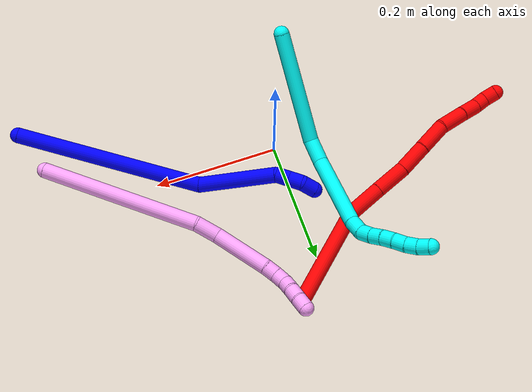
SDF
<sdf version="1.7">
 <world name="default">
  <plugin name="TubeGeneratorPlugin" filename="libtube_generator_plugin.so"/>
  <model name="photoneo_s_sensor">
   <static>1</static>
   <pose>0 0 2 1.57079 1.57079 3.14159</pose>
   <link name="link">
    <inertial><mass>0.1</mass></inertial>
    <sensor name="sensor" type="depth">
     <update_rate>30</update_rate>
     <camera>
      <horizontal_fov>1.22</horizontal_fov>
      <image><width>1920</width><height>1200</height><format>B8G8R8</format></image>
      <clip><near>0.1</near><far>4</far></clip>
      <depth_camera><output>points</output></depth_camera>
     </camera>
     <plugin name="camera_plugin" filename="libgazebo_ros_depth_camera.so">
      <baseline>0.2</baseline>
      <alwaysOn>1</alwaysOn>
      <updateRate>0.0</updateRate>
      <cameraName>camera_ir</cameraName>
      <imageTopicName>/camera/color/image_raw</imageTopicName>
      <cameraInfoTopicName>/camera/color/camera_info</cameraInfoTopicName>
      <depthImageTopicName>/camera/depth/image_raw</depthImageTopicName>
      <depthImageCameraInfoTopicName>/camera/depth/camera_info</depthImageCameraInfoTopicName>
      <pointCloudTopicName>/camera/depth/points</pointCloudTopicName>
      <frameName>fr_optical</frameName>
      <pointCloudCutoff>0.1</pointCloudCutoff>
      <pointCloudCutoffMax>2.0</pointCloudCutoffMax>
      <distortionK1>0</distortionK1>
      <distortionK2>0</distortionK2>
      <distortionK3>0</distortionK3>
      <distortionT1>0</distortionT1>
      <distortionT2>0</distortionT2>
      <CxPrime>0</CxPrime>
      <Cx>0</Cx>
      <Cy>0</Cy>
      <focalLength>0</focalLength>
      <hackBaseline>0</hackBaseline>
     </plugin>
    </sensor>
   </link>
  </model>
  <gravity>0 0 -9.8</gravity>
  <magnetic_field>6e-06 2.3e-05 -4.2e-05</magnetic_field>
  <atmosphere type="adiabatic"/>
  <physics name="default_physics" default="0" type="ode">
   <max_step_size>0.003</max_step_size>
   <real_time_factor>1</real_time_factor>
   <real_time_update_rate>1000</real_time_update_rate>
   <max_contacts>10000</max_contacts>
   <ode>
    <solver>
     <type>quick</type>
     <iters>100</iters>
     <sor>1.3</sor>
     <use_dynamic_moi_rescaling>0</use_dynamic_moi_rescaling>
    </solver>
    <constraints>
     <contact_max_correcting_vel>0</contact_max_correcting_vel>
     <contact_surface_layer>0.001</contact_surface_layer>
     <cfm>0</cfm>
     <erp>0.2</erp>
    </constraints>
   </ode>
  </physics>
  <scene><ambient>0.4 0.4 0.4 1</ambient><background>0.7 0.7 0.7 1</background><shadows>0</shadows></scene>
  <audio><device>default</device></audio>
  <spherical_coordinates>
   <surface_model>EARTH_WGS84</surface_model>
   <latitude_deg>0</latitude_deg>
   <longitude_deg>0</longitude_deg>
   <elevation>0</elevation>
   <heading_deg>0</heading_deg>
  </spherical_coordinates>
  <model name="bin">
   <static>1</static>
   <link name="bottom">
    <collision name="collision-bottom">
     <pose>0 0 -0.01 0 -0 0</pose>
     <geometry><box><size>0.8 0.6 0.02</size></box></geometry>
     <surface>
      <friction><ode><mu>100</mu><mu2>100</mu2></ode></friction>
      <contact><collide_bitmask>65535</collide_bitmask></contact>
     </surface>
    </collision>
   </link>
   <link name="west_wall">
    <collision name="collision-west_wall">
     <pose>-0.41 0 0.1 0 -0 0</pose>
     <geometry><box><size>0.02 0.6 0.2</size></box></geometry>
     <surface>
      <friction><ode><mu>100</mu><mu2>100</mu2></ode></friction>
      <contact><collide_bitmask>65535</collide_bitmask></contact>
     </surface>
    </collision>
   </link>
   <link name="east_wall">
    <collision name="collision-east_wall">
     <pose>0.41 0 0.1 0 -0 0</pose>
     <geometry><box><size>0.02 0.6 0.2</size></box></geometry>
     <surface>
      <friction><ode><mu>100</mu><mu2>100</mu2></ode></friction>
      <contact><collide_bitmask>65535</collide_bitmask></contact>
     </surface>
    </collision>
   </link>
   <link name="south_wall">
    <collision name="collision-south_wall">
     <pose>0 -0.31 0.1 0 -0 0</pose>
     <geometry><box><size>0.8 0.02 0.2</size></box></geometry>
     <surface>
      <friction><ode><mu>100</mu><mu2>100</mu2></ode></friction>
      <contact><collide_bitmask>65535</collide_bitmask></contact>
     </surface>
    </collision>
   </link>
   <link name="north_wall">
    <collision name="collision-north_wall">
     <pose>0 0.31 0.1 0 -0 0</pose>
     <geometry><box><size>0.8 0.02 0.2</size></box></geometry>
     <surface>
      <friction><ode><mu>100</mu><mu2>100</mu2></ode></friction>
      <contact><collide_bitmask>65535</collide_bitmask></contact>
     </surface>
    </collision>
   </link>
  </model>
  <model name="1">
   <static>0</static>
   <link name="1">
    <collision name="collision-cylinder-e_1_1_4">
     <pose>-0.025144 0.083306 -0.123638 -2.54867 -0.167081 0.535111</pose>
     <geometry><cylinder><radius>0.0125</radius><length>0.302379</length></cylinder></geometry>
     <surface>
      <friction><ode><mu>1.16</mu><mu2>1.16</mu2><slip1>0</slip1><slip2>0</slip2></ode></friction>
      <contact><ode><kp>1e+06</kp><kd>1</kd><max_vel>0</max_vel><min_depth>0.001</min_depth></ode></contact>
     </surface>
    </collision>
    <visual name="visual-cylinder-e_1_1_4">
     <pose>-0.025144 0.083306 -0.123638 -2.54867 -0.167081 0.535111</pose>
     <geometry><cylinder><radius>0.0125</radius><length>0.302379</length></cylinder></geometry>
     <material><ambient>0 0 1 1</ambient></material>
    </visual>
    <collision name="collision-cylinder-e_2_4_5">
     <pose>-0.047474 0.17413 -0.312557 -3.02693 0.04278 -0.713556</pose>
     <geometry><cylinder><radius>0.0125</radius><length>0.131546</length></cylinder></geometry>
     <surface>
      <friction><ode><mu>1.16</mu><mu2>1.16</mu2><slip1>0</slip1><slip2>0</slip2></ode></friction>
      <contact><ode><kp>1e+06</kp><kd>1</kd><max_vel>0</max_vel><min_depth>0.001</min_depth></ode></contact>
     </surface>
    </collision>
    <visual name="visual-cylinder-e_2_4_5">
     <pose>-0.047474 0.17413 -0.312557 -3.02693 0.04278 -0.713556</pose>
     <geometry><cylinder><radius>0.0125</radius><length>0.131546</length></cylinder></geometry>
     <material><ambient>0 0 1 1</ambient></material>
    </visual>
    <collision name="collision-cylinder-e_3_5_6">
     <pose>-0.047544 0.186196 -0.387163 -2.68785 -0.271039 1.06707</pose>
     <geometry><cylinder><radius>0.0125</radius><length>0.021536</length></cylinder></geometry>
     <surface>
      <friction><ode><mu>1.16</mu><mu2>1.16</mu2><slip1>0</slip1><slip2>0</slip2></ode></friction>
      <contact><ode><kp>1e+06</kp><kd>1</kd><max_vel>0</max_vel><min_depth>0.001</min_depth></ode></contact>
     </surface>
    </collision>
    <visual name="visual-cylinder-e_3_5_6">
     <pose>-0.047544 0.186196 -0.387163 -2.68785 -0.271039 1.06707</pose>
     <geometry><cylinder><radius>0.0125</radius><length>0.021536</length></cylinder></geometry>
     <material><ambient>0 0 1 1</ambient></material>
    </visual>
    <collision name="collision-cylinder-e_4_6_7">
     <pose>-0.053383 0.195204 -0.405867 -2.69772 -0.277273 1.1076</pose>
     <geometry><cylinder><radius>0.0125</radius><length>0.021596</length></cylinder></geometry>
     <surface>
      <friction><ode><mu>1.16</mu><mu2>1.16</mu2><slip1>0</slip1><slip2>0</slip2></ode></friction>
      <contact><ode><kp>1e+06</kp><kd>1</kd><max_vel>0</max_vel><min_depth>0.001</min_depth></ode></contact>
     </surface>
    </collision>
    <visual name="visual-cylinder-e_4_6_7">
     <pose>-0.053383 0.195204 -0.405867 -2.69772 -0.277273 1.1076</pose>
     <geometry><cylinder><radius>0.0125</radius><length>0.021596</length></cylinder></geometry>
     <material><ambient>0 0 1 1</ambient></material>
    </visual>
    <collision name="collision-cylinder-e_5_7_2">
     <pose>-0.05924 0.208715 -0.421669 -2.18795 -0.255701 0.487799</pose>
     <geometry><cylinder><radius>0.0125</radius><length>0.022943</length></cylinder></geometry>
     <surface>
      <friction><ode><mu>1.16</mu><mu2>1.16</mu2><slip1>0</slip1><slip2>0</slip2></ode></friction>
      <contact><ode><kp>1e+06</kp><kd>1</kd><max_vel>0</max_vel><min_depth>0.001</min_depth></ode></contact>
     </surface>
    </collision>
    <visual name="visual-cylinder-e_5_7_2">
     <pose>-0.05924 0.208715 -0.421669 -2.18795 -0.255701 0.487799</pose>
     <geometry><cylinder><radius>0.0125</radius><length>0.022943</length></cylinder></geometry>
     <material><ambient>0 0 1 1</ambient></material>
    </visual>
    <collision name="collision-sphere-2">
     <pose>-0.062141 0.217766 -0.428092 0 -0 0</pose>
     <geometry><sphere><radius>0.0125</radius></sphere></geometry>
     <surface>
      <friction><ode><mu>1.16</mu><mu2>1.16</mu2><slip1>0</slip1><slip2>0</slip2></ode></friction>
      <contact><ode><kp>1e+06</kp><kd>1</kd><max_vel>0</max_vel><min_depth>0.001</min_depth></ode></contact>
     </surface>
    </collision>
    <visual name="visual-sphere-2">
     <pose>-0.062141 0.217766 -0.428092 0 -0 0</pose>
     <geometry><sphere><radius>0.0125</radius></sphere></geometry>
     <material><ambient>0 0 1 1</ambient></material>
    </visual>
    <collision name="collision-sphere-7">
     <pose>-0.056339 0.199664 -0.415246 0 -0 0</pose>
     <geometry><sphere><radius>0.0125</radius></sphere></geometry>
     <surface>
      <friction><ode><mu>1.16</mu><mu2>1.16</mu2><slip1>0</slip1><slip2>0</slip2></ode></friction>
      <contact><ode><kp>1e+06</kp><kd>1</kd><max_vel>0</max_vel><min_depth>0.001</min_depth></ode></contact>
     </surface>
    </collision>
    <visual name="visual-sphere-7">
     <pose>-0.056339 0.199664 -0.415246 0 -0 0</pose>
     <geometry><sphere><radius>0.0125</radius></sphere></geometry>
     <material><ambient>0 0 1 1</ambient></material>
    </visual>
    <collision name="collision-sphere-6">
     <pose>-0.050427 0.190744 -0.396488 0 -0 0</pose>
     <geometry><sphere><radius>0.0125</radius></sphere></geometry>
     <surface>
      <friction><ode><mu>1.16</mu><mu2>1.16</mu2><slip1>0</slip1><slip2>0</slip2></ode></friction>
      <contact><ode><kp>1e+06</kp><kd>1</kd><max_vel>0</max_vel><min_depth>0.001</min_depth></ode></contact>
     </surface>
    </collision>
    <visual name="visual-sphere-6">
     <pose>-0.050427 0.190744 -0.396488 0 -0 0</pose>
     <geometry><sphere><radius>0.0125</radius></sphere></geometry>
     <material><ambient>0 0 1 1</ambient></material>
    </visual>
    <collision name="collision-sphere-5">
     <pose>-0.044661 0.181649 -0.377838 0 -0 0</pose>
     <geometry><sphere><radius>0.0125</radius></sphere></geometry>
     <surface>
      <friction><ode><mu>1.16</mu><mu2>1.16</mu2><slip1>0</slip1><slip2>0</slip2></ode></friction>
      <contact><ode><kp>1e+06</kp><kd>1</kd><max_vel>0</max_vel><min_depth>0.001</min_depth></ode></contact>
     </surface>
    </collision>
    <visual name="visual-sphere-5">
     <pose>-0.044661 0.181649 -0.377838 0 -0 0</pose>
     <geometry><sphere><radius>0.0125</radius></sphere></geometry>
     <material><ambient>0 0 1 1</ambient></material>
    </visual>
    <collision name="collision-sphere-1">
     <geometry><sphere><radius>0.0125</radius></sphere></geometry>
     <surface>
      <friction><ode><mu>1.16</mu><mu2>1.16</mu2><slip1>0</slip1><slip2>0</slip2></ode></friction>
      <contact><ode><kp>1e+06</kp><kd>1</kd><max_vel>0</max_vel><min_depth>0.001</min_depth></ode></contact>
     </surface>
    </collision>
    <visual name="visual-sphere-1">
     <geometry><sphere><radius>0.0125</radius></sphere></geometry>
     <material><ambient>0 0 1 1</ambient></material>
    </visual>
    <collision name="collision-sphere-4">
     <pose>-0.050287 0.166611 -0.247275 0 -0 0</pose>
     <geometry><sphere><radius>0.0125</radius></sphere></geometry>
     <surface>
      <friction><ode><mu>1.16</mu><mu2>1.16</mu2><slip1>0</slip1><slip2>0</slip2></ode></friction>
      <contact><ode><kp>1e+06</kp><kd>1</kd><max_vel>0</max_vel><min_depth>0.001</min_depth></ode></contact>
     </surface>
    </collision>
    <visual name="visual-sphere-4">
     <pose>-0.050287 0.166611 -0.247275 0 -0 0</pose>
     <geometry><sphere><radius>0.0125</radius></sphere></geometry>
     <material><ambient>0 0 1 1</ambient></material>
    </visual>
    <inertial>
     <pose>-0.034768 0.12222 -0.210557 0 -0 0</pose>
     <mass>0.5</mass>
     <inertia>
      <ixx>0.003151</ixx>
      <ixy>0</ixy>
      <ixz>0</ixz>
      <iyy>-0.000632</iyy>
      <iyz>0</iyz>
      <izz>-0.000956</izz>
     </inertia>
    </inertial>
   </link>
   <pose>0.388503 -0.136825 0.047577 -2.04685 -0.026357 -1.97694</pose>
  </model>
  <model name="2">
   <static>0</static>
   <link name="2">
    <collision name="collision-cylinder-e_1_1_4">
     <pose>-0.054677 -0.051413 0.036044 0.959354 -0.716443 -0.384684</pose>
     <geometry><cylinder><radius>0.0125</radius><length>0.166517</length></cylinder></geometry>
     <surface>
      <friction><ode><mu>1.16</mu><mu2>1.16</mu2><slip1>0</slip1><slip2>0</slip2></ode></friction>
      <contact><ode><kp>1e+06</kp><kd>1</kd><max_vel>0</max_vel><min_depth>0.001</min_depth></ode></contact>
     </surface>
    </collision>
    <visual name="visual-cylinder-e_1_1_4">
     <pose>-0.054677 -0.051413 0.036044 0.959354 -0.716443 -0.384684</pose>
     <geometry><cylinder><radius>0.0125</radius><length>0.166517</length></cylinder></geometry>
     <material><ambient>1 0 0 1</ambient></material>
    </visual>
    <collision name="collision-cylinder-e_2_4_5">
     <pose>-0.135166 -0.112845 0.082675 0.757827 -1.05676 -0.456731</pose>
     <geometry><cylinder><radius>0.0125</radius><length>0.059287</length></cylinder></geometry>
     <surface>
      <friction><ode><mu>1.16</mu><mu2>1.16</mu2><slip1>0</slip1><slip2>0</slip2></ode></friction>
      <contact><ode><kp>1e+06</kp><kd>1</kd><max_vel>0</max_vel><min_depth>0.001</min_depth></ode></contact>
     </surface>
    </collision>
    <visual name="visual-cylinder-e_2_4_5">
     <pose>-0.135166 -0.112845 0.082675 0.757827 -1.05676 -0.456731</pose>
     <geometry><cylinder><radius>0.0125</radius><length>0.059287</length></cylinder></geometry>
     <material><ambient>1 0 0 1</ambient></material>
    </visual>
    <collision name="collision-cylinder-e_3_5_6">
     <pose>-0.184658 -0.131893 0.102597 0.7688 -1.06912 -0.470146</pose>
     <geometry><cylinder><radius>0.0125</radius><length>0.054015</length></cylinder></geometry>
     <surface>
      <friction><ode><mu>1.16</mu><mu2>1.16</mu2><slip1>0</slip1><slip2>0</slip2></ode></friction>
      <contact><ode><kp>1e+06</kp><kd>1</kd><max_vel>0</max_vel><min_depth>0.001</min_depth></ode></contact>
     </surface>
    </collision>
    <visual name="visual-cylinder-e_3_5_6">
     <pose>-0.184658 -0.131893 0.102597 0.7688 -1.06912 -0.470146</pose>
     <geometry><cylinder><radius>0.0125</radius><length>0.054015</length></cylinder></geometry>
     <material><ambient>1 0 0 1</ambient></material>
    </visual>
    <collision name="collision-cylinder-e_4_6_7">
     <pose>-0.228279 -0.150588 0.122522 0.739718 -0.947456 -0.392407</pose>
     <geometry><cylinder><radius>0.0125</radius><length>0.049122</length></cylinder></geometry>
     <surface>
      <friction><ode><mu>1.16</mu><mu2>1.16</mu2><slip1>0</slip1><slip2>0</slip2></ode></friction>
      <contact><ode><kp>1e+06</kp><kd>1</kd><max_vel>0</max_vel><min_depth>0.001</min_depth></ode></contact>
     </surface>
    </collision>
    <visual name="visual-cylinder-e_4_6_7">
     <pose>-0.228279 -0.150588 0.122522 0.739718 -0.947456 -0.392407</pose>
     <geometry><cylinder><radius>0.0125</radius><length>0.049122</length></cylinder></geometry>
     <material><ambient>1 0 0 1</ambient></material>
    </visual>
    <collision name="collision-cylinder-e_5_7_8">
     <pose>-0.268546 -0.171771 0.142426 0.890833 -0.940984 -0.476393</pose>
     <geometry><cylinder><radius>0.0125</radius><length>0.050299</length></cylinder></geometry>
     <surface>
      <friction><ode><mu>1.16</mu><mu2>1.16</mu2><slip1>0</slip1><slip2>0</slip2></ode></friction>
      <contact><ode><kp>1e+06</kp><kd>1</kd><max_vel>0</max_vel><min_depth>0.001</min_depth></ode></contact>
     </surface>
    </collision>
    <visual name="visual-cylinder-e_5_7_8">
     <pose>-0.268546 -0.171771 0.142426 0.890833 -0.940984 -0.476393</pose>
     <geometry><cylinder><radius>0.0125</radius><length>0.050299</length></cylinder></geometry>
     <material><ambient>1 0 0 1</ambient></material>
    </visual>
    <collision name="collision-cylinder-e_6_8_9">
     <pose>-0.309618 -0.19282 0.154358 1.30278 -1.12625 -0.897171</pose>
     <geometry><cylinder><radius>0.0125</radius><length>0.045964</length></cylinder></geometry>
     <surface>
      <friction><ode><mu>1.16</mu><mu2>1.16</mu2><slip1>0</slip1><slip2>0</slip2></ode></friction>
      <contact><ode><kp>1e+06</kp><kd>1</kd><max_vel>0</max_vel><min_depth>0.001</min_depth></ode></contact>
     </surface>
    </collision>
    <visual name="visual-cylinder-e_6_8_9">
     <pose>-0.309618 -0.19282 0.154358 1.30278 -1.12625 -0.897171</pose>
     <geometry><cylinder><radius>0.0125</radius><length>0.045964</length></cylinder></geometry>
     <material><ambient>1 0 0 1</ambient></material>
    </visual>
    <collision name="collision-cylinder-e_7_9_10">
     <pose>-0.344805 -0.209651 0.157757 1.46412 -1.10036 -1.0075</pose>
     <geometry><cylinder><radius>0.0125</radius><length>0.032397</length></cylinder></geometry>
     <surface>
      <friction><ode><mu>1.16</mu><mu2>1.16</mu2><slip1>0</slip1><slip2>0</slip2></ode></friction>
      <contact><ode><kp>1e+06</kp><kd>1</kd><max_vel>0</max_vel><min_depth>0.001</min_depth></ode></contact>
     </surface>
    </collision>
    <visual name="visual-cylinder-e_7_9_10">
     <pose>-0.344805 -0.209651 0.157757 1.46412 -1.10036 -1.0075</pose>
     <geometry><cylinder><radius>0.0125</radius><length>0.032397</length></cylinder></geometry>
     <material><ambient>1 0 0 1</ambient></material>
    </visual>
    <collision name="collision-cylinder-e_8_10_11">
     <pose>-0.36869 -0.220918 0.161324 0.958449 -1.09672 -0.614709</pose>
     <geometry><cylinder><radius>0.0125</radius><length>0.021232</length></cylinder></geometry>
     <surface>
      <friction><ode><mu>1.16</mu><mu2>1.16</mu2><slip1>0</slip1><slip2>0</slip2></ode></friction>
      <contact><ode><kp>1e+06</kp><kd>1</kd><max_vel>0</max_vel><min_depth>0.001</min_depth></ode></contact>
     </surface>
    </collision>
    <visual name="visual-cylinder-e_8_10_11">
     <pose>-0.36869 -0.220918 0.161324 0.958449 -1.09672 -0.614709</pose>
     <geometry><cylinder><radius>0.0125</radius><length>0.021232</length></cylinder></geometry>
     <material><ambient>1 0 0 1</ambient></material>
    </visual>
    <collision name="collision-cylinder-e_9_11_2">
     <pose>-0.387751 -0.224842 0.16853 -0.009318 -1.13993 0.005972</pose>
     <geometry><cylinder><radius>0.0125</radius><length>0.021166</length></cylinder></geometry>
     <surface>
      <friction><ode><mu>1.16</mu><mu2>1.16</mu2><slip1>0</slip1><slip2>0</slip2></ode></friction>
      <contact><ode><kp>1e+06</kp><kd>1</kd><max_vel>0</max_vel><min_depth>0.001</min_depth></ode></contact>
     </surface>
    </collision>
    <visual name="visual-cylinder-e_9_11_2">
     <pose>-0.387751 -0.224842 0.16853 -0.009318 -1.13993 0.005972</pose>
     <geometry><cylinder><radius>0.0125</radius><length>0.021166</length></cylinder></geometry>
     <material><ambient>1 0 0 1</ambient></material>
    </visual>
    <collision name="collision-sphere-2">
     <pose>-0.397366 -0.224801 0.17295 0 -0 0</pose>
     <geometry><sphere><radius>0.0125</radius></sphere></geometry>
     <surface>
      <friction><ode><mu>1.16</mu><mu2>1.16</mu2><slip1>0</slip1><slip2>0</slip2></ode></friction>
      <contact><ode><kp>1e+06</kp><kd>1</kd><max_vel>0</max_vel><min_depth>0.001</min_depth></ode></contact>
     </surface>
    </collision>
    <visual name="visual-sphere-2">
     <pose>-0.397366 -0.224801 0.17295 0 -0 0</pose>
     <geometry><sphere><radius>0.0125</radius></sphere></geometry>
     <material><ambient>1 0 0 1</ambient></material>
    </visual>
    <collision name="collision-sphere-11">
     <pose>-0.378135 -0.224884 0.16411 0 -0 0</pose>
     <geometry><sphere><radius>0.0125</radius></sphere></geometry>
     <surface>
      <friction><ode><mu>1.16</mu><mu2>1.16</mu2><slip1>0</slip1><slip2>0</slip2></ode></friction>
      <contact><ode><kp>1e+06</kp><kd>1</kd><max_vel>0</max_vel><min_depth>0.001</min_depth></ode></contact>
     </surface>
    </collision>
    <visual name="visual-sphere-11">
     <pose>-0.378135 -0.224884 0.16411 0 -0 0</pose>
     <geometry><sphere><radius>0.0125</radius></sphere></geometry>
     <material><ambient>1 0 0 1</ambient></material>
    </visual>
    <collision name="collision-sphere-10">
     <pose>-0.359244 -0.216952 0.158538 0 -0 0</pose>
     <geometry><sphere><radius>0.0125</radius></sphere></geometry>
     <surface>
      <friction><ode><mu>1.16</mu><mu2>1.16</mu2><slip1>0</slip1><slip2>0</slip2></ode></friction>
      <contact><ode><kp>1e+06</kp><kd>1</kd><max_vel>0</max_vel><min_depth>0.001</min_depth></ode></contact>
     </surface>
    </collision>
    <visual name="visual-sphere-10">
     <pose>-0.359244 -0.216952 0.158538 0 -0 0</pose>
     <geometry><sphere><radius>0.0125</radius></sphere></geometry>
     <material><ambient>1 0 0 1</ambient></material>
    </visual>
    <collision name="collision-sphere-9">
     <pose>-0.330366 -0.202351 0.156975 0 -0 0</pose>
     <geometry><sphere><radius>0.0125</radius></sphere></geometry>
     <surface>
      <friction><ode><mu>1.16</mu><mu2>1.16</mu2><slip1>0</slip1><slip2>0</slip2></ode></friction>
      <contact><ode><kp>1e+06</kp><kd>1</kd><max_vel>0</max_vel><min_depth>0.001</min_depth></ode></contact>
     </surface>
    </collision>
    <visual name="visual-sphere-9">
     <pose>-0.330366 -0.202351 0.156975 0 -0 0</pose>
     <geometry><sphere><radius>0.0125</radius></sphere></geometry>
     <material><ambient>1 0 0 1</ambient></material>
    </visual>
    <collision name="collision-sphere-4">
     <pose>-0.109353 -0.102826 0.072088 0 -0 0</pose>
     <geometry><sphere><radius>0.0125</radius></sphere></geometry>
     <surface>
      <friction><ode><mu>1.16</mu><mu2>1.16</mu2><slip1>0</slip1><slip2>0</slip2></ode></friction>
      <contact><ode><kp>1e+06</kp><kd>1</kd><max_vel>0</max_vel><min_depth>0.001</min_depth></ode></contact>
     </surface>
    </collision>
    <visual name="visual-sphere-4">
     <pose>-0.109353 -0.102826 0.072088 0 -0 0</pose>
     <geometry><sphere><radius>0.0125</radius></sphere></geometry>
     <material><ambient>1 0 0 1</ambient></material>
    </visual>
    <collision name="collision-sphere-1">
     <geometry><sphere><radius>0.0125</radius></sphere></geometry>
     <surface>
      <friction><ode><mu>1.16</mu><mu2>1.16</mu2><slip1>0</slip1><slip2>0</slip2></ode></friction>
      <contact><ode><kp>1e+06</kp><kd>1</kd><max_vel>0</max_vel><min_depth>0.001</min_depth></ode></contact>
     </surface>
    </collision>
    <visual name="visual-sphere-1">
     <geometry><sphere><radius>0.0125</radius></sphere></geometry>
     <material><ambient>1 0 0 1</ambient></material>
    </visual>
    <collision name="collision-sphere-8">
     <pose>-0.28887 -0.18329 0.15174 0 -0 0</pose>
     <geometry><sphere><radius>0.0125</radius></sphere></geometry>
     <surface>
      <friction><ode><mu>1.16</mu><mu2>1.16</mu2><slip1>0</slip1><slip2>0</slip2></ode></friction>
      <contact><ode><kp>1e+06</kp><kd>1</kd><max_vel>0</max_vel><min_depth>0.001</min_depth></ode></contact>
     </surface>
    </collision>
    <visual name="visual-sphere-8">
     <pose>-0.28887 -0.18329 0.15174 0 -0 0</pose>
     <geometry><sphere><radius>0.0125</radius></sphere></geometry>
     <material><ambient>1 0 0 1</ambient></material>
    </visual>
    <collision name="collision-sphere-5">
     <pose>-0.160979 -0.122863 0.093262 0 -0 0</pose>
     <geometry><sphere><radius>0.0125</radius></sphere></geometry>
     <surface>
      <friction><ode><mu>1.16</mu><mu2>1.16</mu2><slip1>0</slip1><slip2>0</slip2></ode></friction>
      <contact><ode><kp>1e+06</kp><kd>1</kd><max_vel>0</max_vel><min_depth>0.001</min_depth></ode></contact>
     </surface>
    </collision>
    <visual name="visual-sphere-5">
     <pose>-0.160979 -0.122863 0.093262 0 -0 0</pose>
     <geometry><sphere><radius>0.0125</radius></sphere></geometry>
     <material><ambient>1 0 0 1</ambient></material>
    </visual>
    <collision name="collision-sphere-6">
     <pose>-0.208338 -0.140923 0.111932 0 -0 0</pose>
     <geometry><sphere><radius>0.0125</radius></sphere></geometry>
     <surface>
      <friction><ode><mu>1.16</mu><mu2>1.16</mu2><slip1>0</slip1><slip2>0</slip2></ode></friction>
      <contact><ode><kp>1e+06</kp><kd>1</kd><max_vel>0</max_vel><min_depth>0.001</min_depth></ode></contact>
     </surface>
    </collision>
    <visual name="visual-sphere-6">
     <pose>-0.208338 -0.140923 0.111932 0 -0 0</pose>
     <geometry><sphere><radius>0.0125</radius></sphere></geometry>
     <material><ambient>1 0 0 1</ambient></material>
    </visual>
    <collision name="collision-sphere-7">
     <pose>-0.248221 -0.160253 0.133113 0 -0 0</pose>
     <geometry><sphere><radius>0.0125</radius></sphere></geometry>
     <surface>
      <friction><ode><mu>1.16</mu><mu2>1.16</mu2><slip1>0</slip1><slip2>0</slip2></ode></friction>
      <contact><ode><kp>1e+06</kp><kd>1</kd><max_vel>0</max_vel><min_depth>0.001</min_depth></ode></contact>
     </surface>
    </collision>
    <visual name="visual-sphere-7">
     <pose>-0.248221 -0.160253 0.133113 0 -0 0</pose>
     <geometry><sphere><radius>0.0125</radius></sphere></geometry>
     <material><ambient>1 0 0 1</ambient></material>
    </visual>
    <inertial>
     <pose>-0.186502 -0.127034 0.097652 0 -0 0</pose>
     <mass>0.5</mass>
     <inertia>
      <ixx>0.000146</ixx>
      <ixy>0</ixy>
      <ixz>0</ixz>
      <iyy>0.000208</iyy>
      <iyz>0</iyz>
      <izz>0.000607</izz>
     </inertia>
    </inertial>
   </link>
   <pose>0.046958 0.264637 0.01088 0.572452 -0.040506 -0.111435</pose>
  </model>
  <model name="3">
   <static>0</static>
   <link name="3">
    <collision name="collision-cylinder-e_1_1_4">
     <pose>0.019788 0.082053 0.033555 -1.1826 0.219615 -0.147785</pose>
     <geometry><cylinder><radius>0.0125</radius><length>0.18166</length></cylinder></geometry>
     <surface>
      <friction><ode><mu>1.16</mu><mu2>1.16</mu2><slip1>0</slip1><slip2>0</slip2></ode></friction>
      <contact><ode><kp>1e+06</kp><kd>1</kd><max_vel>0</max_vel><min_depth>0.001</min_depth></ode></contact>
     </surface>
    </collision>
    <visual name="visual-cylinder-e_1_1_4">
     <pose>0.019788 0.082053 0.033555 -1.1826 0.219615 -0.147785</pose>
     <geometry><cylinder><radius>0.0125</radius><length>0.18166</length></cylinder></geometry>
     <material><ambient>0.003922 1 0.996078 1</ambient></material>
    </visual>
    <collision name="collision-cylinder-e_2_4_5">
     <pose>0.039701 0.177354 0.081926 -0.729579 0.006314 -0.002411</pose>
     <geometry><cylinder><radius>0.0125</radius><length>0.039754</length></cylinder></geometry>
     <surface>
      <friction><ode><mu>1.16</mu><mu2>1.16</mu2><slip1>0</slip1><slip2>0</slip2></ode></friction>
      <contact><ode><kp>1e+06</kp><kd>1</kd><max_vel>0</max_vel><min_depth>0.001</min_depth></ode></contact>
     </surface>
    </collision>
    <visual name="visual-cylinder-e_2_4_5">
     <pose>0.039701 0.177354 0.081926 -0.729579 0.006314 -0.002411</pose>
     <geometry><cylinder><radius>0.0125</radius><length>0.039754</length></cylinder></geometry>
     <material><ambient>0.003922 1 0.996078 1</ambient></material>
    </visual>
    <collision name="collision-cylinder-e_3_5_6">
     <pose>0.033893 0.210066 0.158766 -0.304076 -0.091025 0.013956</pose>
     <geometry><cylinder><radius>0.0125</radius><length>0.13055</length></cylinder></geometry>
     <surface>
      <friction><ode><mu>1.16</mu><mu2>1.16</mu2><slip1>0</slip1><slip2>0</slip2></ode></friction>
      <contact><ode><kp>1e+06</kp><kd>1</kd><max_vel>0</max_vel><min_depth>0.001</min_depth></ode></contact>
     </surface>
    </collision>
    <visual name="visual-cylinder-e_3_5_6">
     <pose>0.033893 0.210066 0.158766 -0.304076 -0.091025 0.013956</pose>
     <geometry><cylinder><radius>0.0125</radius><length>0.13055</length></cylinder></geometry>
     <material><ambient>0.003922 1 0.996078 1</ambient></material>
    </visual>
    <collision name="collision-cylinder-e_4_6_7">
     <pose>0.024323 0.233339 0.232163 -0.323252 -0.294321 0.048328</pose>
     <geometry><cylinder><radius>0.0125</radius><length>0.025068</length></cylinder></geometry>
     <surface>
      <friction><ode><mu>1.16</mu><mu2>1.16</mu2><slip1>0</slip1><slip2>0</slip2></ode></friction>
      <contact><ode><kp>1e+06</kp><kd>1</kd><max_vel>0</max_vel><min_depth>0.001</min_depth></ode></contact>
     </surface>
    </collision>
    <visual name="visual-cylinder-e_4_6_7">
     <pose>0.024323 0.233339 0.232163 -0.323252 -0.294321 0.048328</pose>
     <geometry><cylinder><radius>0.0125</radius><length>0.025068</length></cylinder></geometry>
     <material><ambient>0.003922 1 0.996078 1</ambient></material>
    </visual>
    <collision name="collision-cylinder-e_5_7_8">
     <pose>0.013674 0.238249 0.251579 -0.135808 -0.712579 0.050611</pose>
     <geometry><cylinder><radius>0.0125</radius><length>0.021456</length></cylinder></geometry>
     <surface>
      <friction><ode><mu>1.16</mu><mu2>1.16</mu2><slip1>0</slip1><slip2>0</slip2></ode></friction>
      <contact><ode><kp>1e+06</kp><kd>1</kd><max_vel>0</max_vel><min_depth>0.001</min_depth></ode></contact>
     </surface>
    </collision>
    <visual name="visual-cylinder-e_5_7_8">
     <pose>0.013674 0.238249 0.251579 -0.135808 -0.712579 0.050611</pose>
     <geometry><cylinder><radius>0.0125</radius><length>0.021456</length></cylinder></geometry>
     <material><ambient>0.003922 1 0.996078 1</ambient></material>
    </visual>
    <collision name="collision-cylinder-e_6_8_9">
     <pose>-0.000773 0.23988 0.266569 -0.076522 -0.817722 0.033169</pose>
     <geometry><cylinder><radius>0.0125</radius><length>0.020375</length></cylinder></geometry>
     <surface>
      <friction><ode><mu>1.16</mu><mu2>1.16</mu2><slip1>0</slip1><slip2>0</slip2></ode></friction>
      <contact><ode><kp>1e+06</kp><kd>1</kd><max_vel>0</max_vel><min_depth>0.001</min_depth></ode></contact>
     </surface>
    </collision>
    <visual name="visual-cylinder-e_6_8_9">
     <pose>-0.000773 0.23988 0.266569 -0.076522 -0.817722 0.033169</pose>
     <geometry><cylinder><radius>0.0125</radius><length>0.020375</length></cylinder></geometry>
     <material><ambient>0.003922 1 0.996078 1</ambient></material>
    </visual>
    <collision name="collision-cylinder-e_7_9_10">
     <pose>-0.015432 0.241977 0.280621 -0.216699 -0.782009 0.089621</pose>
     <geometry><cylinder><radius>0.0125</radius><length>0.020508</length></cylinder></geometry>
     <surface>
      <friction><ode><mu>1.16</mu><mu2>1.16</mu2><slip1>0</slip1><slip2>0</slip2></ode></friction>
      <contact><ode><kp>1e+06</kp><kd>1</kd><max_vel>0</max_vel><min_depth>0.001</min_depth></ode></contact>
     </surface>
    </collision>
    <visual name="visual-cylinder-e_7_9_10">
     <pose>-0.015432 0.241977 0.280621 -0.216699 -0.782009 0.089621</pose>
     <geometry><cylinder><radius>0.0125</radius><length>0.020508</length></cylinder></geometry>
     <material><ambient>0.003922 1 0.996078 1</ambient></material>
    </visual>
    <collision name="collision-cylinder-e_8_10_11">
     <pose>-0.029811 0.246462 0.294339 -0.4158 -0.780121 0.173019</pose>
     <geometry><cylinder><radius>0.0125</radius><length>0.020342</length></cylinder></geometry>
     <surface>
      <friction><ode><mu>1.16</mu><mu2>1.16</mu2><slip1>0</slip1><slip2>0</slip2></ode></friction>
      <contact><ode><kp>1e+06</kp><kd>1</kd><max_vel>0</max_vel><min_depth>0.001</min_depth></ode></contact>
     </surface>
    </collision>
    <visual name="visual-cylinder-e_8_10_11">
     <pose>-0.029811 0.246462 0.294339 -0.4158 -0.780121 0.173019</pose>
     <geometry><cylinder><radius>0.0125</radius><length>0.020342</length></cylinder></geometry>
     <material><ambient>0.003922 1 0.996078 1</ambient></material>
    </visual>
    <collision name="collision-cylinder-e_9_11_12">
     <pose>-0.044914 0.251448 0.306819 -0.33861 -0.906838 0.166209</pose>
     <geometry><cylinder><radius>0.0125</radius><length>0.020185</length></cylinder></geometry>
     <surface>
      <friction><ode><mu>1.16</mu><mu2>1.16</mu2><slip1>0</slip1><slip2>0</slip2></ode></friction>
      <contact><ode><kp>1e+06</kp><kd>1</kd><max_vel>0</max_vel><min_depth>0.001</min_depth></ode></contact>
     </surface>
    </collision>
    <visual name="visual-cylinder-e_9_11_12">
     <pose>-0.044914 0.251448 0.306819 -0.33861 -0.906838 0.166209</pose>
     <geometry><cylinder><radius>0.0125</radius><length>0.020185</length></cylinder></geometry>
     <material><ambient>0.003922 1 0.996078 1</ambient></material>
    </visual>
    <collision name="collision-cylinder-e_10_12_2">
     <pose>-0.061538 0.254038 0.317734 -0.103475 -1.04143 0.05938</pose>
     <geometry><cylinder><radius>0.0125</radius><length>0.020102</length></cylinder></geometry>
     <surface>
      <friction><ode><mu>1.16</mu><mu2>1.16</mu2><slip1>0</slip1><slip2>0</slip2></ode></friction>
      <contact><ode><kp>1e+06</kp><kd>1</kd><max_vel>0</max_vel><min_depth>0.001</min_depth></ode></contact>
     </surface>
    </collision>
    <visual name="visual-cylinder-e_10_12_2">
     <pose>-0.061538 0.254038 0.317734 -0.103475 -1.04143 0.05938</pose>
     <geometry><cylinder><radius>0.0125</radius><length>0.020102</length></cylinder></geometry>
     <material><ambient>0.003922 1 0.996078 1</ambient></material>
    </visual>
    <collision name="collision-sphere-2">
     <pose>-0.070213 0.254562 0.322783 0 -0 0</pose>
     <geometry><sphere><radius>0.0125</radius></sphere></geometry>
     <surface>
      <friction><ode><mu>1.16</mu><mu2>1.16</mu2><slip1>0</slip1><slip2>0</slip2></ode></friction>
      <contact><ode><kp>1e+06</kp><kd>1</kd><max_vel>0</max_vel><min_depth>0.001</min_depth></ode></contact>
     </surface>
    </collision>
    <visual name="visual-sphere-2">
     <pose>-0.070213 0.254562 0.322783 0 -0 0</pose>
     <geometry><sphere><radius>0.0125</radius></sphere></geometry>
     <material><ambient>0.003922 1 0.996078 1</ambient></material>
    </visual>
    <collision name="collision-sphere-12">
     <pose>-0.052862 0.253514 0.312686 0 -0 0</pose>
     <geometry><sphere><radius>0.0125</radius></sphere></geometry>
     <surface>
      <friction><ode><mu>1.16</mu><mu2>1.16</mu2><slip1>0</slip1><slip2>0</slip2></ode></friction>
      <contact><ode><kp>1e+06</kp><kd>1</kd><max_vel>0</max_vel><min_depth>0.001</min_depth></ode></contact>
     </surface>
    </collision>
    <visual name="visual-sphere-12">
     <pose>-0.052862 0.253514 0.312686 0 -0 0</pose>
     <geometry><sphere><radius>0.0125</radius></sphere></geometry>
     <material><ambient>0.003922 1 0.996078 1</ambient></material>
    </visual>
    <collision name="collision-sphere-11">
     <pose>-0.036965 0.249382 0.300953 0 -0 0</pose>
     <geometry><sphere><radius>0.0125</radius></sphere></geometry>
     <surface>
      <friction><ode><mu>1.16</mu><mu2>1.16</mu2><slip1>0</slip1><slip2>0</slip2></ode></friction>
      <contact><ode><kp>1e+06</kp><kd>1</kd><max_vel>0</max_vel><min_depth>0.001</min_depth></ode></contact>
     </surface>
    </collision>
    <visual name="visual-sphere-11">
     <pose>-0.036965 0.249382 0.300953 0 -0 0</pose>
     <geometry><sphere><radius>0.0125</radius></sphere></geometry>
     <material><ambient>0.003922 1 0.996078 1</ambient></material>
    </visual>
    <collision name="collision-sphere-10">
     <pose>-0.022658 0.243541 0.287726 0 -0 0</pose>
     <geometry><sphere><radius>0.0125</radius></sphere></geometry>
     <surface>
      <friction><ode><mu>1.16</mu><mu2>1.16</mu2><slip1>0</slip1><slip2>0</slip2></ode></friction>
      <contact><ode><kp>1e+06</kp><kd>1</kd><max_vel>0</max_vel><min_depth>0.001</min_depth></ode></contact>
     </surface>
    </collision>
    <visual name="visual-sphere-10">
     <pose>-0.022658 0.243541 0.287726 0 -0 0</pose>
     <geometry><sphere><radius>0.0125</radius></sphere></geometry>
     <material><ambient>0.003922 1 0.996078 1</ambient></material>
    </visual>
    <collision name="collision-sphere-9">
     <pose>-0.008205 0.240413 0.273515 0 -0 0</pose>
     <geometry><sphere><radius>0.0125</radius></sphere></geometry>
     <surface>
      <friction><ode><mu>1.16</mu><mu2>1.16</mu2><slip1>0</slip1><slip2>0</slip2></ode></friction>
      <contact><ode><kp>1e+06</kp><kd>1</kd><max_vel>0</max_vel><min_depth>0.001</min_depth></ode></contact>
     </surface>
    </collision>
    <visual name="visual-sphere-9">
     <pose>-0.008205 0.240413 0.273515 0 -0 0</pose>
     <geometry><sphere><radius>0.0125</radius></sphere></geometry>
     <material><ambient>0.003922 1 0.996078 1</ambient></material>
    </visual>
    <collision name="collision-sphere-4">
     <pose>0.039575 0.164105 0.067109 0 -0 0</pose>
     <geometry><sphere><radius>0.0125</radius></sphere></geometry>
     <surface>
      <friction><ode><mu>1.16</mu><mu2>1.16</mu2><slip1>0</slip1><slip2>0</slip2></ode></friction>
      <contact><ode><kp>1e+06</kp><kd>1</kd><max_vel>0</max_vel><min_depth>0.001</min_depth></ode></contact>
     </surface>
    </collision>
    <visual name="visual-sphere-4">
     <pose>0.039575 0.164105 0.067109 0 -0 0</pose>
     <geometry><sphere><radius>0.0125</radius></sphere></geometry>
     <material><ambient>0.003922 1 0.996078 1</ambient></material>
    </visual>
    <collision name="collision-sphere-1">
     <geometry><sphere><radius>0.0125</radius></sphere></geometry>
     <surface>
      <friction><ode><mu>1.16</mu><mu2>1.16</mu2><slip1>0</slip1><slip2>0</slip2></ode></friction>
      <contact><ode><kp>1e+06</kp><kd>1</kd><max_vel>0</max_vel><min_depth>0.001</min_depth></ode></contact>
     </surface>
    </collision>
    <visual name="visual-sphere-1">
     <geometry><sphere><radius>0.0125</radius></sphere></geometry>
     <material><ambient>0.003922 1 0.996078 1</ambient></material>
    </visual>
    <collision name="collision-sphere-8">
     <pose>0.00666 0.239348 0.259622 0 -0 0</pose>
     <geometry><sphere><radius>0.0125</radius></sphere></geometry>
     <surface>
      <friction><ode><mu>1.16</mu><mu2>1.16</mu2><slip1>0</slip1><slip2>0</slip2></ode></friction>
      <contact><ode><kp>1e+06</kp><kd>1</kd><max_vel>0</max_vel><min_depth>0.001</min_depth></ode></contact>
     </surface>
    </collision>
    <visual name="visual-sphere-8">
     <pose>0.00666 0.239348 0.259622 0 -0 0</pose>
     <geometry><sphere><radius>0.0125</radius></sphere></geometry>
     <material><ambient>0.003922 1 0.996078 1</ambient></material>
    </visual>
    <collision name="collision-sphere-5">
     <pose>0.039826 0.190603 0.096743 0 -0 0</pose>
     <geometry><sphere><radius>0.0125</radius></sphere></geometry>
     <surface>
      <friction><ode><mu>1.16</mu><mu2>1.16</mu2><slip1>0</slip1><slip2>0</slip2></ode></friction>
      <contact><ode><kp>1e+06</kp><kd>1</kd><max_vel>0</max_vel><min_depth>0.001</min_depth></ode></contact>
     </surface>
    </collision>
    <visual name="visual-sphere-5">
     <pose>0.039826 0.190603 0.096743 0 -0 0</pose>
     <geometry><sphere><radius>0.0125</radius></sphere></geometry>
     <material><ambient>0.003922 1 0.996078 1</ambient></material>
    </visual>
    <collision name="collision-sphere-6">
     <pose>0.027959 0.229529 0.220789 0 -0 0</pose>
     <geometry><sphere><radius>0.0125</radius></sphere></geometry>
     <surface>
      <friction><ode><mu>1.16</mu><mu2>1.16</mu2><slip1>0</slip1><slip2>0</slip2></ode></friction>
      <contact><ode><kp>1e+06</kp><kd>1</kd><max_vel>0</max_vel><min_depth>0.001</min_depth></ode></contact>
     </surface>
    </collision>
    <visual name="visual-sphere-6">
     <pose>0.027959 0.229529 0.220789 0 -0 0</pose>
     <geometry><sphere><radius>0.0125</radius></sphere></geometry>
     <material><ambient>0.003922 1 0.996078 1</ambient></material>
    </visual>
    <collision name="collision-sphere-7">
     <pose>0.020687 0.23715 0.243537 0 -0 0</pose>
     <geometry><sphere><radius>0.0125</radius></sphere></geometry>
     <surface>
      <friction><ode><mu>1.16</mu><mu2>1.16</mu2><slip1>0</slip1><slip2>0</slip2></ode></friction>
      <contact><ode><kp>1e+06</kp><kd>1</kd><max_vel>0</max_vel><min_depth>0.001</min_depth></ode></contact>
     </surface>
    </collision>
    <visual name="visual-sphere-7">
     <pose>0.020687 0.23715 0.243537 0 -0 0</pose>
     <geometry><sphere><radius>0.0125</radius></sphere></geometry>
     <material><ambient>0.003922 1 0.996078 1</ambient></material>
    </visual>
    <inertial>
     <pose>0.014837 0.170774 0.142102 0 -0 0</pose>
     <mass>0.5</mass>
     <inertia>
      <ixx>0.000619</ixx>
      <ixy>0</ixy>
      <ixz>0</ixz>
      <iyy>0.000353</iyy>
      <iyz>0</iyz>
      <izz>-0.000582</izz>
     </inertia>
    </inertial>
   </link>
   <pose>-0.055759 -0.127019 0.136423 -1.05593 0.352384 0.016446</pose>
  </model>
  <model name="4">
   <static>0</static>
   <link name="4">
    <collision name="collision-cylinder-e_1_1_4">
     <pose>-0.098597 0.07095 0.054988 -0.911474 -0.832255 0.426639</pose>
     <geometry><cylinder><radius>0.0125</radius><length>0.266676</length></cylinder></geometry>
     <surface>
      <friction><ode><mu>1.16</mu><mu2>1.16</mu2><slip1>0</slip1><slip2>0</slip2></ode></friction>
      <contact><ode><kp>1e+06</kp><kd>1</kd><max_vel>0</max_vel><min_depth>0.001</min_depth></ode></contact>
     </surface>
    </collision>
    <visual name="visual-cylinder-e_1_1_4">
     <pose>-0.098597 0.07095 0.054988 -0.911474 -0.832255 0.426639</pose>
     <geometry><cylinder><radius>0.0125</radius><length>0.266676</length></cylinder></geometry>
     <material><ambient>1 0.65098 0.996078 1</ambient></material>
    </visual>
    <collision name="collision-cylinder-e_2_4_5">
     <pose>-0.211325 0.154363 0.113384 -1.30389 -0.830153 0.648947</pose>
     <geometry><cylinder><radius>0.0125</radius><length>0.038294</length></cylinder></geometry>
     <surface>
      <friction><ode><mu>1.16</mu><mu2>1.16</mu2><slip1>0</slip1><slip2>0</slip2></ode></friction>
      <contact><ode><kp>1e+06</kp><kd>1</kd><max_vel>0</max_vel><min_depth>0.001</min_depth></ode></contact>
     </surface>
    </collision>
    <visual name="visual-cylinder-e_2_4_5">
     <pose>-0.211325 0.154363 0.113384 -1.30389 -0.830153 0.648947</pose>
     <geometry><cylinder><radius>0.0125</radius><length>0.038294</length></cylinder></geometry>
     <material><ambient>1 0.65098 0.996078 1</ambient></material>
    </visual>
    <collision name="collision-cylinder-e_3_5_6">
     <pose>-0.251671 0.200176 0.137342 -1.01854 -0.58976 0.336014</pose>
     <geometry><cylinder><radius>0.0125</radius><length>0.094273</length></cylinder></geometry>
     <surface>
      <friction><ode><mu>1.16</mu><mu2>1.16</mu2><slip1>0</slip1><slip2>0</slip2></ode></friction>
      <contact><ode><kp>1e+06</kp><kd>1</kd><max_vel>0</max_vel><min_depth>0.001</min_depth></ode></contact>
     </surface>
    </collision>
    <visual name="visual-cylinder-e_3_5_6">
     <pose>-0.251671 0.200176 0.137342 -1.01854 -0.58976 0.336014</pose>
     <geometry><cylinder><radius>0.0125</radius><length>0.094273</length></cylinder></geometry>
     <material><ambient>1 0.65098 0.996078 1</ambient></material>
    </visual>
    <collision name="collision-cylinder-e_4_6_7">
     <pose>-0.283655 0.241165 0.160902 -1.19563 -0.612442 0.424105</pose>
     <geometry><cylinder><radius>0.0125</radius><length>0.020068</length></cylinder></geometry>
     <surface>
      <friction><ode><mu>1.16</mu><mu2>1.16</mu2><slip1>0</slip1><slip2>0</slip2></ode></friction>
      <contact><ode><kp>1e+06</kp><kd>1</kd><max_vel>0</max_vel><min_depth>0.001</min_depth></ode></contact>
     </surface>
    </collision>
    <visual name="visual-cylinder-e_4_6_7">
     <pose>-0.283655 0.241165 0.160902 -1.19563 -0.612442 0.424105</pose>
     <geometry><cylinder><radius>0.0125</radius><length>0.020068</length></cylinder></geometry>
     <material><ambient>1 0.65098 0.996078 1</ambient></material>
    </visual>
    <collision name="collision-cylinder-e_5_7_8">
     <pose>-0.293371 0.256668 0.169015 -0.995028 -0.398507 0.218458</pose>
     <geometry><cylinder><radius>0.0125</radius><length>0.020346</length></cylinder></geometry>
     <surface>
      <friction><ode><mu>1.16</mu><mu2>1.16</mu2><slip1>0</slip1><slip2>0</slip2></ode></friction>
      <contact><ode><kp>1e+06</kp><kd>1</kd><max_vel>0</max_vel><min_depth>0.001</min_depth></ode></contact>
     </surface>
    </collision>
    <visual name="visual-cylinder-e_5_7_8">
     <pose>-0.293371 0.256668 0.169015 -0.995028 -0.398507 0.218458</pose>
     <geometry><cylinder><radius>0.0125</radius><length>0.020346</length></cylinder></geometry>
     <material><ambient>1 0.65098 0.996078 1</ambient></material>
    </visual>
    <collision name="collision-cylinder-e_6_8_9">
     <pose>-0.297812 0.271492 0.181356 -0.765923 -0.049144 0.019801</pose>
     <geometry><cylinder><radius>0.0125</radius><length>0.020103</length></cylinder></geometry>
     <surface>
      <friction><ode><mu>1.16</mu><mu2>1.16</mu2><slip1>0</slip1><slip2>0</slip2></ode></friction>
      <contact><ode><kp>1e+06</kp><kd>1</kd><max_vel>0</max_vel><min_depth>0.001</min_depth></ode></contact>
     </surface>
    </collision>
    <visual name="visual-cylinder-e_6_8_9">
     <pose>-0.297812 0.271492 0.181356 -0.765923 -0.049144 0.019801</pose>
     <geometry><cylinder><radius>0.0125</radius><length>0.020103</length></cylinder></geometry>
     <material><ambient>1 0.65098 0.996078 1</ambient></material>
    </visual>
    <collision name="collision-cylinder-e_7_9_10">
     <pose>-0.299855 0.286672 0.19428 -0.965512 -0.153768 0.080708</pose>
     <geometry><cylinder><radius>0.0125</radius><length>0.020231</length></cylinder></geometry>
     <surface>
      <friction><ode><mu>1.16</mu><mu2>1.16</mu2><slip1>0</slip1><slip2>0</slip2></ode></friction>
      <contact><ode><kp>1e+06</kp><kd>1</kd><max_vel>0</max_vel><min_depth>0.001</min_depth></ode></contact>
     </surface>
    </collision>
    <visual name="visual-cylinder-e_7_9_10">
     <pose>-0.299855 0.286672 0.19428 -0.965512 -0.153768 0.080708</pose>
     <geometry><cylinder><radius>0.0125</radius><length>0.020231</length></cylinder></geometry>
     <material><ambient>1 0.65098 0.996078 1</ambient></material>
    </visual>
    <collision name="collision-cylinder-e_8_10_2">
     <pose>-0.30391 0.303461 0.204483 -1.08579 -0.253162 0.153271</pose>
     <geometry><cylinder><radius>0.0125</radius><length>0.020009</length></cylinder></geometry>
     <surface>
      <friction><ode><mu>1.16</mu><mu2>1.16</mu2><slip1>0</slip1><slip2>0</slip2></ode></friction>
      <contact><ode><kp>1e+06</kp><kd>1</kd><max_vel>0</max_vel><min_depth>0.001</min_depth></ode></contact>
     </surface>
    </collision>
    <visual name="visual-cylinder-e_8_10_2">
     <pose>-0.30391 0.303461 0.204483 -1.08579 -0.253162 0.153271</pose>
     <geometry><cylinder><radius>0.0125</radius><length>0.020009</length></cylinder></geometry>
     <material><ambient>1 0.65098 0.996078 1</ambient></material>
    </visual>
    <collision name="collision-sphere-2">
     <pose>-0.306416 0.31203 0.208999 0 -0 0</pose>
     <geometry><sphere><radius>0.0125</radius></sphere></geometry>
     <surface>
      <friction><ode><mu>1.16</mu><mu2>1.16</mu2><slip1>0</slip1><slip2>0</slip2></ode></friction>
      <contact><ode><kp>1e+06</kp><kd>1</kd><max_vel>0</max_vel><min_depth>0.001</min_depth></ode></contact>
     </surface>
    </collision>
    <visual name="visual-sphere-2">
     <pose>-0.306416 0.31203 0.208999 0 -0 0</pose>
     <geometry><sphere><radius>0.0125</radius></sphere></geometry>
     <material><ambient>1 0.65098 0.996078 1</ambient></material>
    </visual>
    <collision name="collision-sphere-10">
     <pose>-0.301405 0.294892 0.199967 0 -0 0</pose>
     <geometry><sphere><radius>0.0125</radius></sphere></geometry>
     <surface>
      <friction><ode><mu>1.16</mu><mu2>1.16</mu2><slip1>0</slip1><slip2>0</slip2></ode></friction>
      <contact><ode><kp>1e+06</kp><kd>1</kd><max_vel>0</max_vel><min_depth>0.001</min_depth></ode></contact>
     </surface>
    </collision>
    <visual name="visual-sphere-10">
     <pose>-0.301405 0.294892 0.199967 0 -0 0</pose>
     <geometry><sphere><radius>0.0125</radius></sphere></geometry>
     <material><ambient>1 0.65098 0.996078 1</ambient></material>
    </visual>
    <collision name="collision-sphere-9">
     <pose>-0.298306 0.278451 0.188592 0 -0 0</pose>
     <geometry><sphere><radius>0.0125</radius></sphere></geometry>
     <surface>
      <friction><ode><mu>1.16</mu><mu2>1.16</mu2><slip1>0</slip1><slip2>0</slip2></ode></friction>
      <contact><ode><kp>1e+06</kp><kd>1</kd><max_vel>0</max_vel><min_depth>0.001</min_depth></ode></contact>
     </surface>
    </collision>
    <visual name="visual-sphere-9">
     <pose>-0.298306 0.278451 0.188592 0 -0 0</pose>
     <geometry><sphere><radius>0.0125</radius></sphere></geometry>
     <material><ambient>1 0.65098 0.996078 1</ambient></material>
    </visual>
    <collision name="collision-sphere-4">
     <pose>-0.197194 0.141901 0.109976 0 -0 0</pose>
     <geometry><sphere><radius>0.0125</radius></sphere></geometry>
     <surface>
      <friction><ode><mu>1.16</mu><mu2>1.16</mu2><slip1>0</slip1><slip2>0</slip2></ode></friction>
      <contact><ode><kp>1e+06</kp><kd>1</kd><max_vel>0</max_vel><min_depth>0.001</min_depth></ode></contact>
     </surface>
    </collision>
    <visual name="visual-sphere-4">
     <pose>-0.197194 0.141901 0.109976 0 -0 0</pose>
     <geometry><sphere><radius>0.0125</radius></sphere></geometry>
     <material><ambient>1 0.65098 0.996078 1</ambient></material>
    </visual>
    <collision name="collision-sphere-1">
     <geometry><sphere><radius>0.0125</radius></sphere></geometry>
     <surface>
      <friction><ode><mu>1.16</mu><mu2>1.16</mu2><slip1>0</slip1><slip2>0</slip2></ode></friction>
      <contact><ode><kp>1e+06</kp><kd>1</kd><max_vel>0</max_vel><min_depth>0.001</min_depth></ode></contact>
     </surface>
    </collision>
    <visual name="visual-sphere-1">
     <geometry><sphere><radius>0.0125</radius></sphere></geometry>
     <material><ambient>1 0.65098 0.996078 1</ambient></material>
    </visual>
    <collision name="collision-sphere-8">
     <pose>-0.297318 0.264533 0.17412 0 -0 0</pose>
     <geometry><sphere><radius>0.0125</radius></sphere></geometry>
     <surface>
      <friction><ode><mu>1.16</mu><mu2>1.16</mu2><slip1>0</slip1><slip2>0</slip2></ode></friction>
      <contact><ode><kp>1e+06</kp><kd>1</kd><max_vel>0</max_vel><min_depth>0.001</min_depth></ode></contact>
     </surface>
    </collision>
    <visual name="visual-sphere-8">
     <pose>-0.297318 0.264533 0.17412 0 -0 0</pose>
     <geometry><sphere><radius>0.0125</radius></sphere></geometry>
     <material><ambient>1 0.65098 0.996078 1</ambient></material>
    </visual>
    <collision name="collision-sphere-5">
     <pose>-0.225456 0.166825 0.116791 0 -0 0</pose>
     <geometry><sphere><radius>0.0125</radius></sphere></geometry>
     <surface>
      <friction><ode><mu>1.16</mu><mu2>1.16</mu2><slip1>0</slip1><slip2>0</slip2></ode></friction>
      <contact><ode><kp>1e+06</kp><kd>1</kd><max_vel>0</max_vel><min_depth>0.001</min_depth></ode></contact>
     </surface>
    </collision>
    <visual name="visual-sphere-5">
     <pose>-0.225456 0.166825 0.116791 0 -0 0</pose>
     <geometry><sphere><radius>0.0125</radius></sphere></geometry>
     <material><ambient>1 0.65098 0.996078 1</ambient></material>
    </visual>
    <collision name="collision-sphere-6">
     <pose>-0.277887 0.233526 0.157893 0 -0 0</pose>
     <geometry><sphere><radius>0.0125</radius></sphere></geometry>
     <surface>
      <friction><ode><mu>1.16</mu><mu2>1.16</mu2><slip1>0</slip1><slip2>0</slip2></ode></friction>
      <contact><ode><kp>1e+06</kp><kd>1</kd><max_vel>0</max_vel><min_depth>0.001</min_depth></ode></contact>
     </surface>
    </collision>
    <visual name="visual-sphere-6">
     <pose>-0.277887 0.233526 0.157893 0 -0 0</pose>
     <geometry><sphere><radius>0.0125</radius></sphere></geometry>
     <material><ambient>1 0.65098 0.996078 1</ambient></material>
    </visual>
    <collision name="collision-sphere-7">
     <pose>-0.289423 0.248804 0.16391 0 -0 0</pose>
     <geometry><sphere><radius>0.0125</radius></sphere></geometry>
     <surface>
      <friction><ode><mu>1.16</mu><mu2>1.16</mu2><slip1>0</slip1><slip2>0</slip2></ode></friction>
      <contact><ode><kp>1e+06</kp><kd>1</kd><max_vel>0</max_vel><min_depth>0.001</min_depth></ode></contact>
     </surface>
    </collision>
    <visual name="visual-sphere-7">
     <pose>-0.289423 0.248804 0.16391 0 -0 0</pose>
     <geometry><sphere><radius>0.0125</radius></sphere></geometry>
     <material><ambient>1 0.65098 0.996078 1</ambient></material>
    </visual>
    <inertial>
     <pose>-0.175815 0.142189 0.100578 0 -0 0</pose>
     <mass>0.5</mass>
     <inertia>
      <ixx>0.001486</ixx>
      <ixy>0</ixy>
      <ixz>0</ixz>
      <iyy>0.001819</iyy>
      <iyz>0</iyz>
      <izz>0.000332</izz>
     </inertia>
    </inertial>
   </link>
   <pose>0.364583 -0.081116 0.011496 -0.252226 -0.306396 -0.041821</pose>
  </model>
 </world>
</sdf>
